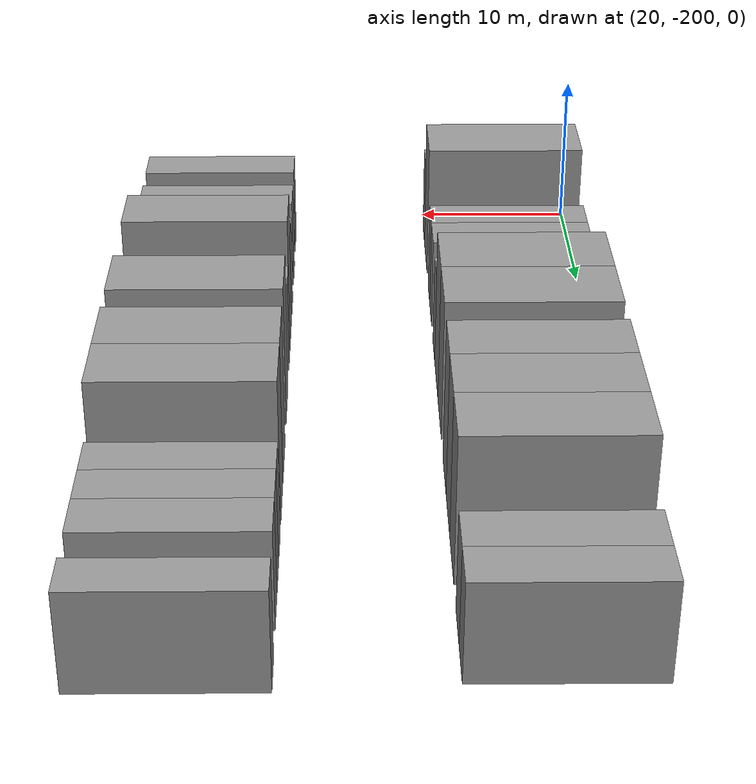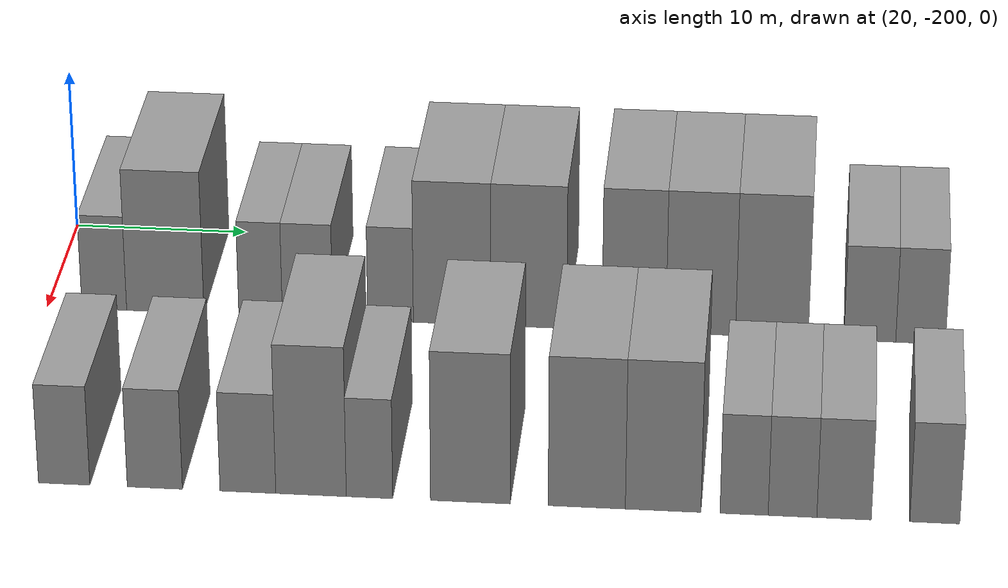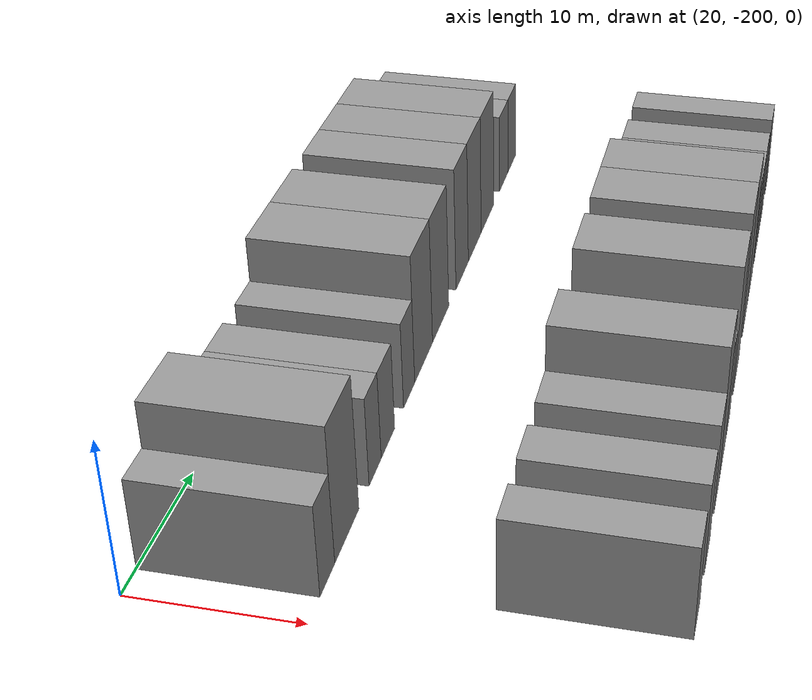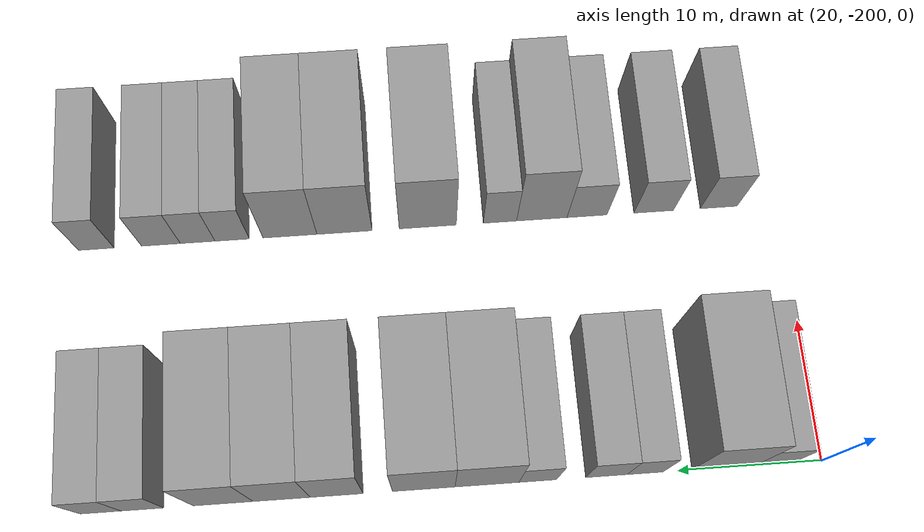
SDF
<sdf version="1.6">
 <world name="default">
  <model name="building_1">
   <static>1</static>
   <pose>25.0000 -196.7132 0 0.000000 0.000000 0.000000</pose>
   <link name="link">
    <pose>0 0 3.00 0 0 0</pose>
    <collision name="collision"><geometry><box><size>10.0000 2.5736 6.0000</size></box></geometry></collision>
    <visual name="visual">
     <cast_shadows>0</cast_shadows>
     <geometry><box><size>10.0000 2.5736 6.0000</size></box></geometry>
     <material>
      <script>
       <uri>model://grey_wall/materials/scripts</uri>
       <uri>model://grey_wall/materials/textures</uri>
       <name>vrc/grey_wall</name>
      </script>
     </material>
    </visual>
   </link>
  </model>
  <model name="building_2">
   <static>1</static>
   <pose>25.0000 -193.2047 0 0.000000 0.000000 0.000000</pose>
   <link name="link">
    <pose>0 0 4.50 0 0 0</pose>
    <collision name="collision"><geometry><box><size>10.0000 4.4435 9.0000</size></box></geometry></collision>
    <visual name="visual">
     <cast_shadows>0</cast_shadows>
     <geometry><box><size>10.0000 4.4435 9.0000</size></box></geometry>
     <material>
      <script>
       <uri>model://grey_wall/materials/scripts</uri>
       <uri>model://grey_wall/materials/textures</uri>
       <name>vrc/grey_wall</name>
      </script>
     </material>
    </visual>
   </link>
  </model>
  <model name="building_3">
   <static>1</static>
   <pose>25.0000 -187.7370 0 0.000000 0.000000 0.000000</pose>
   <link name="link">
    <pose>0 0 3.00 0 0 0</pose>
    <collision name="collision"><geometry><box><size>10.0000 2.4917 6.0000</size></box></geometry></collision>
    <visual name="visual">
     <cast_shadows>0</cast_shadows>
     <geometry><box><size>10.0000 2.4917 6.0000</size></box></geometry>
     <material>
      <script>
       <uri>model://grey_wall/materials/scripts</uri>
       <uri>model://grey_wall/materials/textures</uri>
       <name>vrc/grey_wall</name>
      </script>
     </material>
    </visual>
   </link>
  </model>
  <model name="building_4">
   <static>1</static>
   <pose>25.0000 -185.0531 0 0.000000 0.000000 0.000000</pose>
   <link name="link">
    <pose>0 0 3.00 0 0 0</pose>
    <collision name="collision"><geometry><box><size>10.0000 2.8762 6.0000</size></box></geometry></collision>
    <visual name="visual">
     <cast_shadows>0</cast_shadows>
     <geometry><box><size>10.0000 2.8762 6.0000</size></box></geometry>
     <material>
      <script>
       <uri>model://grey_wall/materials/scripts</uri>
       <uri>model://grey_wall/materials/textures</uri>
       <name>vrc/grey_wall</name>
      </script>
     </material>
    </visual>
   </link>
  </model>
  <model name="building_5">
   <static>1</static>
   <pose>25.0000 -180.3151 0 0.000000 0.000000 0.000000</pose>
   <link name="link">
    <pose>0 0 3.00 0 0 0</pose>
    <collision name="collision"><geometry><box><size>10.0000 2.5999 6.0000</size></box></geometry></collision>
    <visual name="visual">
     <cast_shadows>0</cast_shadows>
     <geometry><box><size>10.0000 2.5999 6.0000</size></box></geometry>
     <material>
      <script>
       <uri>model://grey_wall/materials/scripts</uri>
       <uri>model://grey_wall/materials/textures</uri>
       <name>vrc/grey_wall</name>
      </script>
     </material>
    </visual>
   </link>
  </model>
  <model name="building_6">
   <static>1</static>
   <pose>25.0000 -176.8122 0 0.000000 0.000000 0.000000</pose>
   <link name="link">
    <pose>0 0 4.50 0 0 0</pose>
    <collision name="collision"><geometry><box><size>10.0000 4.4058 9.0000</size></box></geometry></collision>
    <visual name="visual">
     <cast_shadows>0</cast_shadows>
     <geometry><box><size>10.0000 4.4058 9.0000</size></box></geometry>
     <material>
      <script>
       <uri>model://grey_wall/materials/scripts</uri>
       <uri>model://grey_wall/materials/textures</uri>
       <name>vrc/grey_wall</name>
      </script>
     </material>
    </visual>
   </link>
  </model>
  <model name="building_7">
   <static>1</static>
   <pose>25.0000 -172.4604 0 0.000000 0.000000 0.000000</pose>
   <link name="link">
    <pose>0 0 4.50 0 0 0</pose>
    <collision name="collision"><geometry><box><size>10.0000 4.2978 9.0000</size></box></geometry></collision>
    <visual name="visual">
     <cast_shadows>0</cast_shadows>
     <geometry><box><size>10.0000 4.2978 9.0000</size></box></geometry>
     <material>
      <script>
       <uri>model://grey_wall/materials/scripts</uri>
       <uri>model://grey_wall/materials/textures</uri>
       <name>vrc/grey_wall</name>
      </script>
     </material>
    </visual>
   </link>
  </model>
  <model name="building_8">
   <static>1</static>
   <pose>25.0000 -166.5079 0 0.000000 0.000000 0.000000</pose>
   <link name="link">
    <pose>0 0 4.50 0 0 0</pose>
    <collision name="collision"><geometry><box><size>10.0000 3.6071 9.0000</size></box></geometry></collision>
    <visual name="visual">
     <cast_shadows>0</cast_shadows>
     <geometry><box><size>10.0000 3.6071 9.0000</size></box></geometry>
     <material>
      <script>
       <uri>model://grey_wall/materials/scripts</uri>
       <uri>model://grey_wall/materials/textures</uri>
       <name>vrc/grey_wall</name>
      </script>
     </material>
    </visual>
   </link>
  </model>
  <model name="building_9">
   <static>1</static>
   <pose>25.0000 -162.7397 0 0.000000 0.000000 0.000000</pose>
   <link name="link">
    <pose>0 0 4.50 0 0 0</pose>
    <collision name="collision"><geometry><box><size>10.0000 3.9293 9.0000</size></box></geometry></collision>
    <visual name="visual">
     <cast_shadows>0</cast_shadows>
     <geometry><box><size>10.0000 3.9293 9.0000</size></box></geometry>
     <material>
      <script>
       <uri>model://grey_wall/materials/scripts</uri>
       <uri>model://grey_wall/materials/textures</uri>
       <name>vrc/grey_wall</name>
      </script>
     </material>
    </visual>
   </link>
  </model>
  <model name="building_10">
   <static>1</static>
   <pose>25.0000 -158.7315 0 0.000000 0.000000 0.000000</pose>
   <link name="link">
    <pose>0 0 4.50 0 0 0</pose>
    <collision name="collision"><geometry><box><size>10.0000 4.0873 9.0000</size></box></geometry></collision>
    <visual name="visual">
     <cast_shadows>0</cast_shadows>
     <geometry><box><size>10.0000 4.0873 9.0000</size></box></geometry>
     <material>
      <script>
       <uri>model://grey_wall/materials/scripts</uri>
       <uri>model://grey_wall/materials/textures</uri>
       <name>vrc/grey_wall</name>
      </script>
     </material>
    </visual>
   </link>
  </model>
  <model name="building_11">
   <static>1</static>
   <pose>25.0000 -153.2360 0 0.000000 0.000000 0.000000</pose>
   <link name="link">
    <pose>0 0 3.00 0 0 0</pose>
    <collision name="collision"><geometry><box><size>10.0000 2.9037 6.0000</size></box></geometry></collision>
    <visual name="visual">
     <cast_shadows>0</cast_shadows>
     <geometry><box><size>10.0000 2.9037 6.0000</size></box></geometry>
     <material>
      <script>
       <uri>model://grey_wall/materials/scripts</uri>
       <uri>model://grey_wall/materials/textures</uri>
       <name>vrc/grey_wall</name>
      </script>
     </material>
    </visual>
   </link>
  </model>
  <model name="building_12">
   <static>1</static>
   <pose>25.0000 -150.3929 0 0.000000 0.000000 0.000000</pose>
   <link name="link">
    <pose>0 0 3.00 0 0 0</pose>
    <collision name="collision"><geometry><box><size>10.0000 2.7824 6.0000</size></box></geometry></collision>
    <visual name="visual">
     <cast_shadows>0</cast_shadows>
     <geometry><box><size>10.0000 2.7824 6.0000</size></box></geometry>
     <material>
      <script>
       <uri>model://grey_wall/materials/scripts</uri>
       <uri>model://grey_wall/materials/textures</uri>
       <name>vrc/grey_wall</name>
      </script>
     </material>
    </visual>
   </link>
  </model>
  <model name="building_101">
   <static>1</static>
   <pose>44.0000 -195.6258 0 0.000000 0.000000 0.000000</pose>
   <link name="link">
    <pose>0 0 3.00 0 0 0</pose>
    <collision name="collision"><geometry><box><size>10.0000 2.7484 6.0000</size></box></geometry></collision>
    <visual name="visual">
     <cast_shadows>0</cast_shadows>
     <geometry><box><size>10.0000 2.7484 6.0000</size></box></geometry>
     <material>
      <script>
       <uri>model://grey_wall/materials/scripts</uri>
       <uri>model://grey_wall/materials/textures</uri>
       <name>vrc/grey_wall</name>
      </script>
     </material>
    </visual>
   </link>
  </model>
  <model name="building_102">
   <static>1</static>
   <pose>44.0000 -190.7808 0 0.000000 0.000000 0.000000</pose>
   <link name="link">
    <pose>0 0 3.00 0 0 0</pose>
    <collision name="collision"><geometry><box><size>10.0000 2.9414 6.0000</size></box></geometry></collision>
    <visual name="visual">
     <cast_shadows>0</cast_shadows>
     <geometry><box><size>10.0000 2.9414 6.0000</size></box></geometry>
     <material>
      <script>
       <uri>model://grey_wall/materials/scripts</uri>
       <uri>model://grey_wall/materials/textures</uri>
       <name>vrc/grey_wall</name>
      </script>
     </material>
    </visual>
   </link>
  </model>
  <model name="building_103">
   <static>1</static>
   <pose>44.0000 -185.8272 0 0.000000 0.000000 0.000000</pose>
   <link name="link">
    <pose>0 0 3.00 0 0 0</pose>
    <collision name="collision"><geometry><box><size>10.0000 2.9658 6.0000</size></box></geometry></collision>
    <visual name="visual">
     <cast_shadows>0</cast_shadows>
     <geometry><box><size>10.0000 2.9658 6.0000</size></box></geometry>
     <material>
      <script>
       <uri>model://grey_wall/materials/scripts</uri>
       <uri>model://grey_wall/materials/textures</uri>
       <name>vrc/grey_wall</name>
      </script>
     </material>
    </visual>
   </link>
  </model>
  <model name="building_104">
   <static>1</static>
   <pose>44.0000 -182.4751 0 0.000000 0.000000 0.000000</pose>
   <link name="link">
    <pose>0 0 4.50 0 0 0</pose>
    <collision name="collision"><geometry><box><size>10.0000 3.7385 9.0000</size></box></geometry></collision>
    <visual name="visual">
     <cast_shadows>0</cast_shadows>
     <geometry><box><size>10.0000 3.7385 9.0000</size></box></geometry>
     <material>
      <script>
       <uri>model://grey_wall/materials/scripts</uri>
       <uri>model://grey_wall/materials/textures</uri>
       <name>vrc/grey_wall</name>
      </script>
     </material>
    </visual>
   </link>
  </model>
  <model name="building_105">
   <static>1</static>
   <pose>44.0000 -179.3778 0 0.000000 0.000000 0.000000</pose>
   <link name="link">
    <pose>0 0 3.00 0 0 0</pose>
    <collision name="collision"><geometry><box><size>10.0000 2.4561 6.0000</size></box></geometry></collision>
    <visual name="visual">
     <cast_shadows>0</cast_shadows>
     <geometry><box><size>10.0000 2.4561 6.0000</size></box></geometry>
     <material>
      <script>
       <uri>model://grey_wall/materials/scripts</uri>
       <uri>model://grey_wall/materials/textures</uri>
       <name>vrc/grey_wall</name>
      </script>
     </material>
    </visual>
   </link>
  </model>
  <model name="building_106">
   <static>1</static>
   <pose>44.0000 -174.0493 0 0.000000 0.000000 0.000000</pose>
   <link name="link">
    <pose>0 0 4.50 0 0 0</pose>
    <collision name="collision"><geometry><box><size>10.0000 4.2009 9.0000</size></box></geometry></collision>
    <visual name="visual">
     <cast_shadows>0</cast_shadows>
     <geometry><box><size>10.0000 4.2009 9.0000</size></box></geometry>
     <material>
      <script>
       <uri>model://grey_wall/materials/scripts</uri>
       <uri>model://grey_wall/materials/textures</uri>
       <name>vrc/grey_wall</name>
      </script>
     </material>
    </visual>
   </link>
  </model>
  <model name="building_107">
   <static>1</static>
   <pose>44.0000 -167.9230 0 0.000000 0.000000 0.000000</pose>
   <link name="link">
    <pose>0 0 4.50 0 0 0</pose>
    <collision name="collision"><geometry><box><size>10.0000 4.0517 9.0000</size></box></geometry></collision>
    <visual name="visual">
     <cast_shadows>0</cast_shadows>
     <geometry><box><size>10.0000 4.0517 9.0000</size></box></geometry>
     <material>
      <script>
       <uri>model://grey_wall/materials/scripts</uri>
       <uri>model://grey_wall/materials/textures</uri>
       <name>vrc/grey_wall</name>
      </script>
     </material>
    </visual>
   </link>
  </model>
  <model name="building_108">
   <static>1</static>
   <pose>44.0000 -163.9190 0 0.000000 0.000000 0.000000</pose>
   <link name="link">
    <pose>0 0 4.50 0 0 0</pose>
    <collision name="collision"><geometry><box><size>10.0000 3.9563 9.0000</size></box></geometry></collision>
    <visual name="visual">
     <cast_shadows>0</cast_shadows>
     <geometry><box><size>10.0000 3.9563 9.0000</size></box></geometry>
     <material>
      <script>
       <uri>model://grey_wall/materials/scripts</uri>
       <uri>model://grey_wall/materials/textures</uri>
       <name>vrc/grey_wall</name>
      </script>
     </material>
    </visual>
   </link>
  </model>
  <model name="building_109">
   <static>1</static>
   <pose>44.0000 -159.6840 0 0.000000 0.000000 0.000000</pose>
   <link name="link">
    <pose>0 0 3.00 0 0 0</pose>
    <collision name="collision"><geometry><box><size>10.0000 2.5137 6.0000</size></box></geometry></collision>
    <visual name="visual">
     <cast_shadows>0</cast_shadows>
     <geometry><box><size>10.0000 2.5137 6.0000</size></box></geometry>
     <material>
      <script>
       <uri>model://grey_wall/materials/scripts</uri>
       <uri>model://grey_wall/materials/textures</uri>
       <name>vrc/grey_wall</name>
      </script>
     </material>
    </visual>
   </link>
  </model>
  <model name="building_110">
   <static>1</static>
   <pose>44.0000 -157.1580 0 0.000000 0.000000 0.000000</pose>
   <link name="link">
    <pose>0 0 3.00 0 0 0</pose>
    <collision name="collision"><geometry><box><size>10.0000 2.5383 6.0000</size></box></geometry></collision>
    <visual name="visual">
     <cast_shadows>0</cast_shadows>
     <geometry><box><size>10.0000 2.5383 6.0000</size></box></geometry>
     <material>
      <script>
       <uri>model://grey_wall/materials/scripts</uri>
       <uri>model://grey_wall/materials/textures</uri>
       <name>vrc/grey_wall</name>
      </script>
     </material>
    </visual>
   </link>
  </model>
  <model name="building_111">
   <static>1</static>
   <pose>44.0000 -154.4722 0 0.000000 0.000000 0.000000</pose>
   <link name="link">
    <pose>0 0 3.00 0 0 0</pose>
    <collision name="collision"><geometry><box><size>10.0000 2.8334 6.0000</size></box></geometry></collision>
    <visual name="visual">
     <cast_shadows>0</cast_shadows>
     <geometry><box><size>10.0000 2.8334 6.0000</size></box></geometry>
     <material>
      <script>
       <uri>model://grey_wall/materials/scripts</uri>
       <uri>model://grey_wall/materials/textures</uri>
       <name>vrc/grey_wall</name>
      </script>
     </material>
    </visual>
   </link>
  </model>
  <model name="building_112">
   <static>1</static>
   <pose>44.0000 -149.7612 0 0.000000 0.000000 0.000000</pose>
   <link name="link">
    <pose>0 0 3.00 0 0 0</pose>
    <collision name="collision"><geometry><box><size>10.0000 2.5886 6.0000</size></box></geometry></collision>
    <visual name="visual">
     <cast_shadows>0</cast_shadows>
     <geometry><box><size>10.0000 2.5886 6.0000</size></box></geometry>
     <material>
      <script>
       <uri>model://grey_wall/materials/scripts</uri>
       <uri>model://grey_wall/materials/textures</uri>
       <name>vrc/grey_wall</name>
      </script>
     </material>
    </visual>
   </link>
  </model>
 </world>
</sdf>
